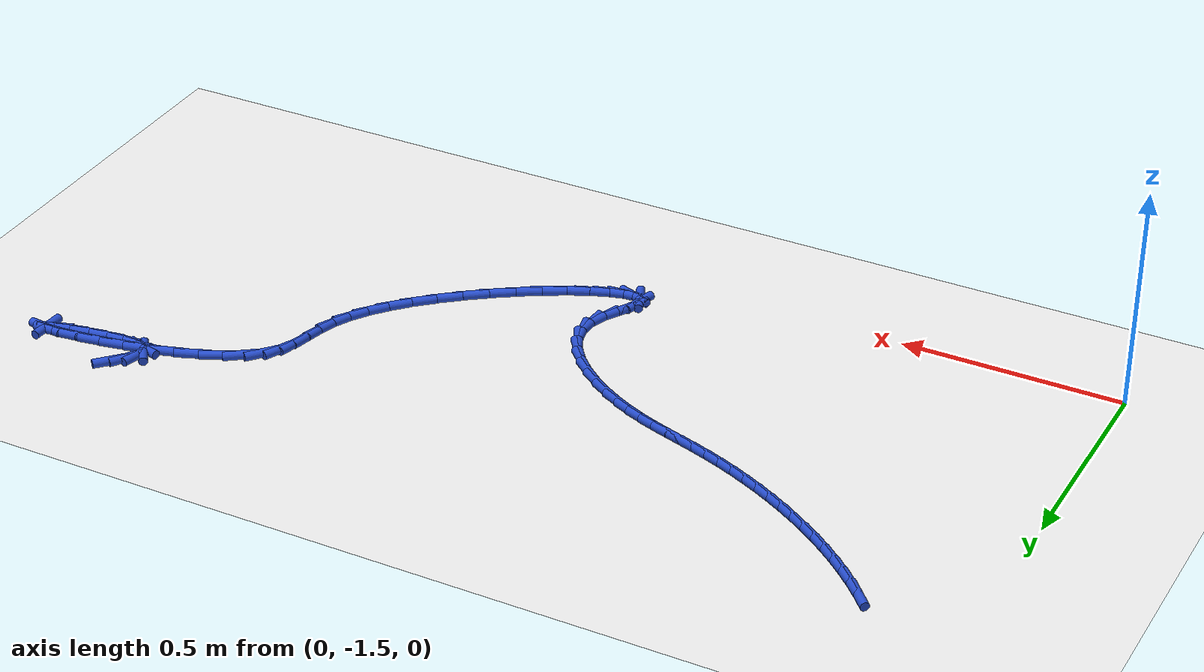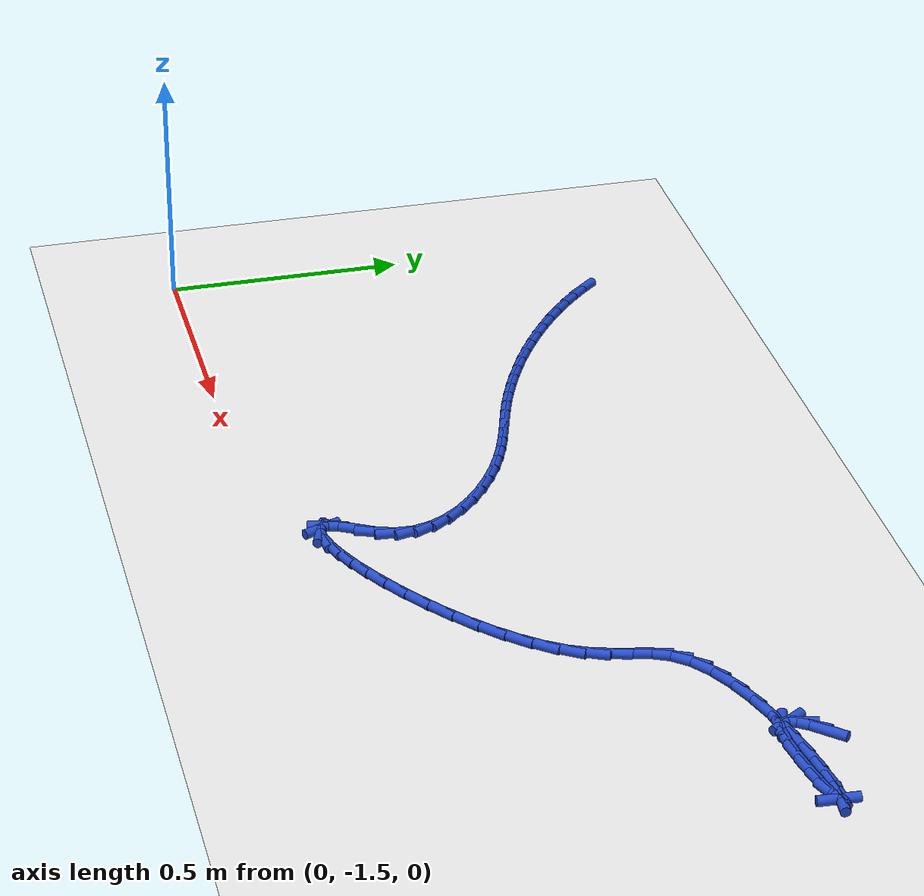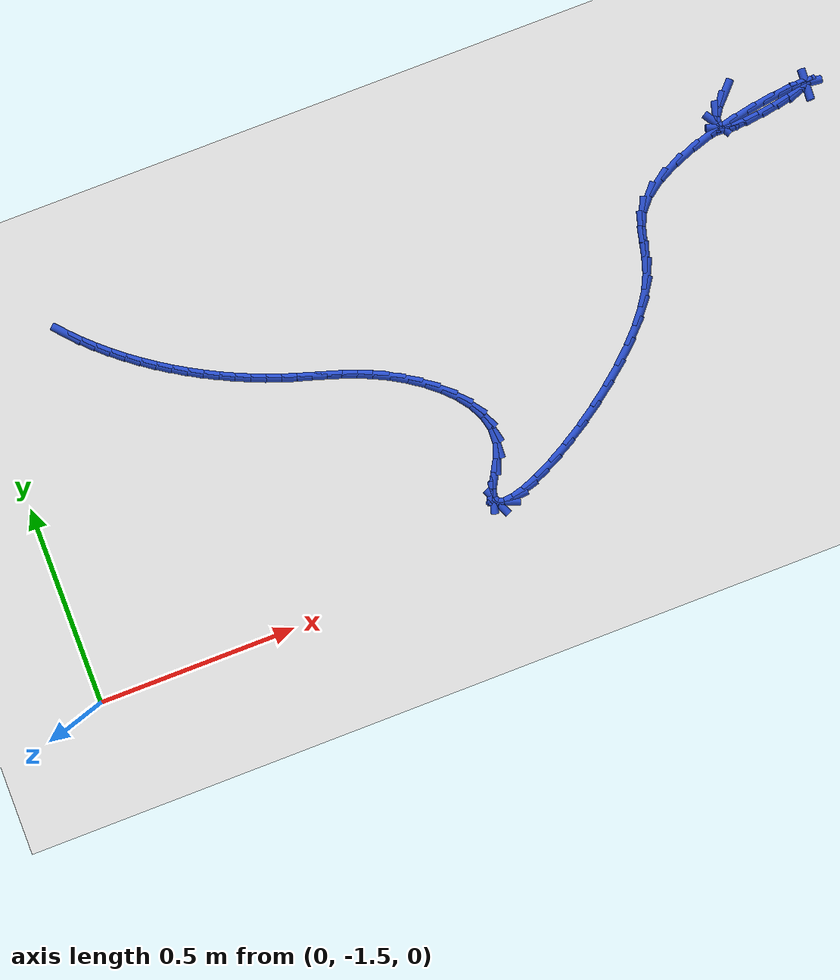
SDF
<sdf version="1.6">
 <world name="default">
  <model name="ground_plane">
   <static>1</static>
   <link name="link">
    <collision name="collision">
     <geometry><plane><normal>0 0 1</normal><size>100 100</size></plane></geometry>
     <surface><friction><ode><mu>100</mu><mu2>50</mu2></ode></friction></surface>
    </collision>
    <visual name="visual">
     <cast_shadows>0</cast_shadows>
     <geometry><plane><normal>0 0 1</normal><size>100 100</size></plane></geometry>
     <material>
      <script><uri>file://media/materials/scripts/gazebo.material</uri><name>Gazebo/WhiteGlow</name></script>
     </material>
    </visual>
   </link>
  </model>
  <model name="line">
   <link name="link_135">
    <pose>1.9542435848929889 -0.6494443943694622 0.01 0 1.57 0.8197165080307512</pose>
    <collision name="collision">
     <geometry><cylinder><radius>0.01</radius><length>0.08</length></cylinder></geometry>
    </collision>
    <visual name="visual">
     <material>
      <script><name>Gazebo/Blue</name><uri>file://media/materials/scripts/gazebo.material</uri></script>
     </material>
     <geometry><cylinder><radius>0.01</radius><length>0.08</length></cylinder></geometry>
    </visual>
   </link>
   <link name="link_136">
    <pose>1.931133360173678 -0.6741978671155926 0.01 0 1.57 0.9657861117656014</pose>
    <collision name="collision">
     <geometry><cylinder><radius>0.01</radius><length>0.08</length></cylinder></geometry>
    </collision>
    <visual name="visual">
     <material>
      <script><name>Gazebo/Blue</name><uri>file://media/materials/scripts/gazebo.material</uri></script>
     </material>
     <geometry><cylinder><radius>0.01</radius><length>0.08</length></cylinder></geometry>
    </visual>
   </link>
   <link name="link_137">
    <pose>1.9167384955555613 -0.6950142124877774 0.01 0 1.57 1.3182694971367963</pose>
    <collision name="collision">
     <geometry><cylinder><radius>0.01</radius><length>0.08</length></cylinder></geometry>
    </collision>
    <visual name="visual">
     <material>
      <script><name>Gazebo/Blue</name><uri>file://media/materials/scripts/gazebo.material</uri></script>
     </material>
     <geometry><cylinder><radius>0.01</radius><length>0.08</length></cylinder></geometry>
    </visual>
   </link>
   <link name="link_138">
    <pose>1.9125014727767176 -0.7114345384082934 0.01 0 1.57 -1.0038522543107689</pose>
    <collision name="collision">
     <geometry><cylinder><radius>0.01</radius><length>0.08</length></cylinder></geometry>
    </collision>
    <visual name="visual">
     <material>
      <script><name>Gazebo/Blue</name><uri>file://media/materials/scripts/gazebo.material</uri></script>
     </material>
     <geometry><cylinder><radius>0.01</radius><length>0.08</length></cylinder></geometry>
    </visual>
   </link>
   <link name="link_139">
    <pose>1.9198647735752234 -0.7229999527994166 0.01 0 1.57 -0.2972812211043334</pose>
    <collision name="collision">
     <geometry><cylinder><radius>0.01</radius><length>0.08</length></cylinder></geometry>
    </collision>
    <visual name="visual">
     <material>
      <script><name>Gazebo/Blue</name><uri>file://media/materials/scripts/gazebo.material</uri></script>
     </material>
     <geometry><cylinder><radius>0.01</radius><length>0.08</length></cylinder></geometry>
    </visual>
   </link>
   <link name="link_140">
    <pose>1.940270879689157 -0.7292515635834231 0.01 0 1.57 -0.023000981150309772</pose>
    <collision name="collision">
     <geometry><cylinder><radius>0.01</radius><length>0.08</length></cylinder></geometry>
    </collision>
    <visual name="visual">
     <material>
      <script><name>Gazebo/Blue</name><uri>file://media/materials/scripts/gazebo.material</uri></script>
     </material>
     <geometry><cylinder><radius>0.01</radius><length>0.08</length></cylinder></geometry>
    </visual>
   </link>
   <link name="link_141">
    <pose>1.9740126374338387 -0.7300277940090916 0.01 0 1.57 0.08417685299239348</pose>
    <collision name="collision">
     <geometry><cylinder><radius>0.01</radius><length>0.08</length></cylinder></geometry>
    </collision>
    <visual name="visual">
     <material>
      <script><name>Gazebo/Blue</name><uri>file://media/materials/scripts/gazebo.material</uri></script>
     </material>
     <geometry><cylinder><radius>0.01</radius><length>0.08</length></cylinder></geometry>
    </visual>
   </link>
   <link name="link_142">
    <pose>2.0164253705855857 -0.7264491672006507 0.01 0 1.57 0.14248419919772642</pose>
    <collision name="collision">
     <geometry><cylinder><radius>0.01</radius><length>0.08</length></cylinder></geometry>
    </collision>
    <visual name="visual">
     <material>
      <script><name>Gazebo/Blue</name><uri>file://media/materials/scripts/gazebo.material</uri></script>
     </material>
     <geometry><cylinder><radius>0.01</radius><length>0.08</length></cylinder></geometry>
    </visual>
   </link>
   <link name="link_143">
    <pose>2.0615083802899994 -0.7199817245195059 0.01 0 1.57 0.18677295118036513</pose>
    <collision name="collision">
     <geometry><cylinder><radius>0.01</radius><length>0.08</length></cylinder></geometry>
    </collision>
    <visual name="visual">
     <material>
      <script><name>Gazebo/Blue</name><uri>file://media/materials/scripts/gazebo.material</uri></script>
     </material>
     <geometry><cylinder><radius>0.01</radius><length>0.08</length></cylinder></geometry>
    </visual>
   </link>
   <link name="link_144">
    <pose>2.103260948200959 -0.7120915123679535 0.01 0 1.57 0.23746300732127779</pose>
    <collision name="collision">
     <geometry><cylinder><radius>0.01</radius><length>0.08</length></cylinder></geometry>
    </collision>
    <visual name="visual">
     <material>
      <script><name>Gazebo/Blue</name><uri>file://media/materials/scripts/gazebo.material</uri></script>
     </material>
     <geometry><cylinder><radius>0.01</radius><length>0.08</length></cylinder></geometry>
    </visual>
   </link>
   <link name="link_145">
    <pose>2.1356823559723446 -0.704244577148291 0.01 0 1.57 0.3532702683871271</pose>
    <collision name="collision">
     <geometry><cylinder><radius>0.01</radius><length>0.08</length></cylinder></geometry>
    </collision>
    <visual name="visual">
     <material>
      <script><name>Gazebo/Blue</name><uri>file://media/materials/scripts/gazebo.material</uri></script>
     </material>
     <geometry><cylinder><radius>0.01</radius><length>0.08</length></cylinder></geometry>
    </visual>
   </link>
   <link name="link_146">
    <pose>2.152950135449954 -0.6978772741832215 0.01 0 1.57 1.4983872275575882</pose>
    <collision name="collision">
     <geometry><cylinder><radius>0.01</radius><length>0.08</length></cylinder></geometry>
    </collision>
    <visual name="visual">
     <material>
      <script><name>Gazebo/Blue</name><uri>file://media/materials/scripts/gazebo.material</uri></script>
     </material>
     <geometry><cylinder><radius>0.01</radius><length>0.08</length></cylinder></geometry>
    </visual>
   </link>
   <link name="link_147">
    <pose>2.1532488943990358 -0.6937585013931374 0.01 0 1.57 -0.12056922970717514</pose>
    <collision name="collision">
     <geometry><cylinder><radius>0.01</radius><length>0.08</length></cylinder></geometry>
    </collision>
    <visual name="visual">
     <material>
      <script><name>Gazebo/Blue</name><uri>file://media/materials/scripts/gazebo.material</uri></script>
     </material>
     <geometry><cylinder><radius>0.01</radius><length>0.08</length></cylinder></geometry>
    </visual>
   </link>
   <link name="link_148">
    <pose>2.138719494883307 -0.6919981646378807 0.01 0 1.57 0.02513489577467971</pose>
    <collision name="collision">
     <geometry><cylinder><radius>0.01</radius><length>0.08</length></cylinder></geometry>
    </collision>
    <visual name="visual">
     <material>
      <script><name>Gazebo/Blue</name><uri>file://media/materials/scripts/gazebo.material</uri></script>
     </material>
     <geometry><cylinder><radius>0.01</radius><length>0.08</length></cylinder></geometry>
    </visual>
   </link>
   <link name="link_149">
    <pose>2.1116708843150787 -0.692678171852524 0.01 0 1.57 0.08573552437569797</pose>
    <collision name="collision">
     <geometry><cylinder><radius>0.01</radius><length>0.08</length></cylinder></geometry>
    </collision>
    <visual name="visual">
     <material>
      <script><name>Gazebo/Blue</name><uri>file://media/materials/scripts/gazebo.material</uri></script>
     </material>
     <geometry><cylinder><radius>0.01</radius><length>0.08</length></cylinder></geometry>
    </visual>
   </link>
   <link name="link_150">
    <pose>2.074412010106661 -0.6958804309721394 0.01 0 1.57 0.12787228772695078</pose>
    <collision name="collision">
     <geometry><cylinder><radius>0.01</radius><length>0.08</length></cylinder></geometry>
    </collision>
    <visual name="visual">
     <material>
      <script><name>Gazebo/Blue</name><uri>file://media/materials/scripts/gazebo.material</uri></script>
     </material>
     <geometry><cylinder><radius>0.01</radius><length>0.08</length></cylinder></geometry>
    </visual>
   </link>
   <link name="link_151">
    <pose>2.029251819670365 -0.7016868499317993 0.01 0 1.57 0.16579518239403154</pose>
    <collision name="collision">
     <geometry><cylinder><radius>0.01</radius><length>0.08</length></cylinder></geometry>
    </collision>
    <visual name="visual">
     <material>
      <script><name>Gazebo/Blue</name><uri>file://media/materials/scripts/gazebo.material</uri></script>
     </material>
     <geometry><cylinder><radius>0.01</radius><length>0.08</length></cylinder></geometry>
    </visual>
   </link>
   <link name="link_152">
    <pose>1.9784992604185005 -0.7101793366665764 0.01 0 1.57 0.205448003142174</pose>
    <collision name="collision">
     <geometry><cylinder><radius>0.01</radius><length>0.08</length></cylinder></geometry>
    </collision>
    <visual name="visual">
     <material>
      <script><name>Gazebo/Blue</name><uri>file://media/materials/scripts/gazebo.material</uri></script>
     </material>
     <geometry><cylinder><radius>0.01</radius><length>0.08</length></cylinder></geometry>
    </visual>
   </link>
   <link name="link_153">
    <pose>1.9244632797633785 -0.721439799111543 0.01 0 1.57 0.2510896973947851</pose>
    <collision name="collision">
     <geometry><cylinder><radius>0.01</radius><length>0.08</length></cylinder></geometry>
    </collision>
    <visual name="visual">
     <material>
      <script><name>Gazebo/Blue</name><uri>file://media/materials/scripts/gazebo.material</uri></script>
     </material>
     <geometry><cylinder><radius>0.01</radius><length>0.08</length></cylinder></geometry>
    </visual>
   </link>
   <link name="link_154">
    <pose>1.869452825117311 -0.7355501452017709 0.01 0 1.57 0.30743375285592006</pose>
    <collision name="collision">
     <geometry><cylinder><radius>0.01</radius><length>0.08</length></cylinder></geometry>
    </collision>
    <visual name="visual">
     <material>
      <script><name>Gazebo/Blue</name><uri>file://media/materials/scripts/gazebo.material</uri></script>
     </material>
     <geometry><cylinder><radius>0.01</radius><length>0.08</length></cylinder></geometry>
    </visual>
   </link>
   <link name="link_155">
    <pose>1.815776843892608 -0.752592282872333 0.01 0 1.57 0.381243834679049</pose>
    <collision name="collision">
     <geometry><cylinder><radius>0.01</radius><length>0.08</length></cylinder></geometry>
    </collision>
    <visual name="visual">
     <material>
      <script><name>Gazebo/Blue</name><uri>file://media/materials/scripts/gazebo.material</uri></script>
     </material>
     <geometry><cylinder><radius>0.01</radius><length>0.08</length></cylinder></geometry>
    </visual>
   </link>
   <link name="link_156">
    <pose>1.7657442835015806 -0.7726481200583017 0.01 0 1.57 0.48361315805275695</pose>
    <collision name="collision">
     <geometry><cylinder><radius>0.01</radius><length>0.08</length></cylinder></geometry>
    </collision>
    <visual name="visual">
     <material>
      <script><name>Gazebo/Blue</name><uri>file://media/materials/scripts/gazebo.material</uri></script>
     </material>
     <geometry><cylinder><radius>0.01</radius><length>0.08</length></cylinder></geometry>
    </visual>
   </link>
   <link name="link_157">
    <pose>1.721664091356538 -0.7957995646947498 0.01 0 1.57 0.6338695952803437</pose>
    <collision name="collision">
     <geometry><cylinder><radius>0.01</radius><length>0.08</length></cylinder></geometry>
    </collision>
    <visual name="visual">
     <material>
      <script><name>Gazebo/Blue</name><uri>file://media/materials/scripts/gazebo.material</uri></script>
     </material>
     <geometry><cylinder><radius>0.01</radius><length>0.08</length></cylinder></geometry>
    </visual>
   </link>
   <link name="link_158">
    <pose>1.6858452148697933 -0.8221285247167487 0.01 0 1.57 0.8627054741708235</pose>
    <collision name="collision">
     <geometry><cylinder><radius>0.01</radius><length>0.08</length></cylinder></geometry>
    </collision>
    <visual name="visual">
     <material>
      <script><name>Gazebo/Blue</name><uri>file://media/materials/scripts/gazebo.material</uri></script>
     </material>
     <geometry><cylinder><radius>0.01</radius><length>0.08</length></cylinder></geometry>
    </visual>
   </link>
   <link name="link_159">
    <pose>1.6605170931093824 -0.8517100395506557 0.01 0 1.57 1.128361695752353</pose>
    <collision name="collision">
     <geometry><cylinder><radius>0.01</radius><length>0.08</length></cylinder></geometry>
    </collision>
    <visual name="visual">
     <material>
      <script><name>Gazebo/Blue</name><uri>file://media/materials/scripts/gazebo.material</uri></script>
     </material>
     <geometry><cylinder><radius>0.01</radius><length>0.08</length></cylinder></geometry>
    </visual>
   </link>
   <link name="link_160">
    <pose>1.645043419114546 -0.8843715846500826 0.01 0 1.57 1.2982960547043936</pose>
    <collision name="collision">
     <geometry><cylinder><radius>0.01</radius><length>0.08</length></cylinder></geometry>
    </collision>
    <visual name="visual">
     <material>
      <script><name>Gazebo/Blue</name><uri>file://media/materials/scripts/gazebo.material</uri></script>
     </material>
     <geometry><cylinder><radius>0.01</radius><length>0.08</length></cylinder></geometry>
    </visual>
   </link>
   <link name="link_161">
    <pose>1.635190430776808 -0.9196298611434934 0.01 0 1.57 1.34210206450558</pose>
    <collision name="collision">
     <geometry><cylinder><radius>0.01</radius><length>0.08</length></cylinder></geometry>
    </collision>
    <visual name="visual">
     <material>
      <script><name>Gazebo/Blue</name><uri>file://media/materials/scripts/gazebo.material</uri></script>
     </material>
     <geometry><cylinder><radius>0.01</radius><length>0.08</length></cylinder></geometry>
    </visual>
   </link>
   <link name="link_162">
    <pose>1.6264961395478286 -0.9569818543005267 0.01 0 1.57 1.2719405238055763</pose>
    <collision name="collision">
     <geometry><cylinder><radius>0.01</radius><length>0.08</length></cylinder></geometry>
    </collision>
    <visual name="visual">
     <material>
      <script><name>Gazebo/Blue</name><uri>file://media/materials/scripts/gazebo.material</uri></script>
     </material>
     <geometry><cylinder><radius>0.01</radius><length>0.08</length></cylinder></geometry>
    </visual>
   </link>
   <link name="link_163">
    <pose>1.6144985568792662 -0.9959245493908172 0.01 0 1.57 1.120838660611892</pose>
    <collision name="collision">
     <geometry><cylinder><radius>0.01</radius><length>0.08</length></cylinder></geometry>
    </collision>
    <visual name="visual">
     <material>
      <script><name>Gazebo/Blue</name><uri>file://media/materials/scripts/gazebo.material</uri></script>
     </material>
     <geometry><cylinder><radius>0.01</radius><length>0.08</length></cylinder></geometry>
    </visual>
   </link>
   <link name="link_164">
    <pose>1.595166554355094 -1.0359491627859616 0.01 0 1.57 0.9806344628373592</pose>
    <collision name="collision">
     <geometry><cylinder><radius>0.01</radius><length>0.08</length></cylinder></geometry>
    </collision>
    <visual name="visual">
     <material>
      <script><name>Gazebo/Blue</name><uri>file://media/materials/scripts/gazebo.material</uri></script>
     </material>
     <geometry><cylinder><radius>0.01</radius><length>0.08</length></cylinder></geometry>
    </visual>
   </link>
   <link name="link_165">
    <pose>1.5680063071527246 -1.07649954898246 0.01 0 1.57 0.8760569092508449</pose>
    <collision name="collision">
     <geometry><cylinder><radius>0.01</radius><length>0.08</length></cylinder></geometry>
    </collision>
    <visual name="visual">
     <material>
      <script><name>Gazebo/Blue</name><uri>file://media/materials/scripts/gazebo.material</uri></script>
     </material>
     <geometry><cylinder><radius>0.01</radius><length>0.08</length></cylinder></geometry>
    </visual>
   </link>
   <link name="link_166">
    <pose>1.5342589086466427 -1.1169963332071777 0.01 0 1.57 0.795305235799856</pose>
    <collision name="collision">
     <geometry><cylinder><radius>0.01</radius><length>0.08</length></cylinder></geometry>
    </collision>
    <visual name="visual">
     <material>
      <script><name>Gazebo/Blue</name><uri>file://media/materials/scripts/gazebo.material</uri></script>
     </material>
     <geometry><cylinder><radius>0.01</radius><length>0.08</length></cylinder></geometry>
    </visual>
   </link>
   <link name="link_167">
    <pose>1.495177402113036 -1.156859980686645 0.01 0 1.57 0.7303091149750383</pose>
    <collision name="collision">
     <geometry><cylinder><radius>0.01</radius><length>0.08</length></cylinder></geometry>
    </collision>
    <visual name="visual">
     <material>
      <script><name>Gazebo/Blue</name><uri>file://media/materials/scripts/gazebo.material</uri></script>
     </material>
     <geometry><cylinder><radius>0.01</radius><length>0.08</length></cylinder></geometry>
    </visual>
   </link>
   <link name="link_168">
    <pose>1.4520148308280891 -1.1955109566473947 0.01 0 1.57 0.6756192880635592</pose>
    <collision name="collision">
     <geometry><cylinder><radius>0.01</radius><length>0.08</length></cylinder></geometry>
    </collision>
    <visual name="visual">
     <material>
      <script><name>Gazebo/Blue</name><uri>file://media/materials/scripts/gazebo.material</uri></script>
     </material>
     <geometry><cylinder><radius>0.01</radius><length>0.08</length></cylinder></geometry>
    </visual>
   </link>
   <link name="link_169">
    <pose>1.406024238067989 -1.2323697263159588 0.01 0 1.57 0.6273356098607326</pose>
    <collision name="collision">
     <geometry><cylinder><radius>0.01</radius><length>0.08</length></cylinder></geometry>
    </collision>
    <visual name="visual">
     <material>
      <script><name>Gazebo/Blue</name><uri>file://media/materials/scripts/gazebo.material</uri></script>
     </material>
     <geometry><cylinder><radius>0.01</radius><length>0.08</length></cylinder></geometry>
    </visual>
   </link>
   <link name="link_170">
    <pose>1.3584586671089194 -1.26685675491887 0.01 0 1.57 0.5823540845712082</pose>
    <collision name="collision">
     <geometry><cylinder><radius>0.01</radius><length>0.08</length></cylinder></geometry>
    </collision>
    <visual name="visual">
     <material>
      <script><name>Gazebo/Blue</name><uri>file://media/materials/scripts/gazebo.material</uri></script>
     </material>
     <geometry><cylinder><radius>0.01</radius><length>0.08</length></cylinder></geometry>
    </visual>
   </link>
   <link name="link_171">
    <pose>1.3105711612270685 -1.2983925076826588 0.01 0 1.57 0.5377705407554121</pose>
    <collision name="collision">
     <geometry><cylinder><radius>0.01</radius><length>0.08</length></cylinder></geometry>
    </collision>
    <visual name="visual">
     <material>
      <script><name>Gazebo/Blue</name><uri>file://media/materials/scripts/gazebo.material</uri></script>
     </material>
     <geometry><cylinder><radius>0.01</radius><length>0.08</length></cylinder></geometry>
    </visual>
   </link>
   <link name="link_172">
    <pose>1.2636147636986212 -1.326397449833858 0.01 0 1.57 0.4902366504426903</pose>
    <collision name="collision">
     <geometry><cylinder><radius>0.01</radius><length>0.08</length></cylinder></geometry>
    </collision>
    <visual name="visual">
     <material>
      <script><name>Gazebo/Blue</name><uri>file://media/materials/scripts/gazebo.material</uri></script>
     </material>
     <geometry><cylinder><radius>0.01</radius><length>0.08</length></cylinder></geometry>
    </visual>
   </link>
   <link name="link_173">
    <pose>1.218842517799764 -1.3502920465989998 0.01 0 1.57 0.4349377280161387</pose>
    <collision name="collision">
     <geometry><cylinder><radius>0.01</radius><length>0.08</length></cylinder></geometry>
    </collision>
    <visual name="visual">
     <material>
      <script><name>Gazebo/Blue</name><uri>file://media/materials/scripts/gazebo.material</uri></script>
     </material>
     <geometry><cylinder><radius>0.01</radius><length>0.08</length></cylinder></geometry>
    </visual>
   </link>
   <link name="link_174">
    <pose>1.1775074668066816 -1.369496763204616 0.01 0 1.57 0.3633919491088101</pose>
    <collision name="collision">
     <geometry><cylinder><radius>0.01</radius><length>0.08</length></cylinder></geometry>
    </collision>
    <visual name="visual">
     <material>
      <script><name>Gazebo/Blue</name><uri>file://media/materials/scripts/gazebo.material</uri></script>
     </material>
     <geometry><cylinder><radius>0.01</radius><length>0.08</length></cylinder></geometry>
    </visual>
   </link>
   <link name="link_175">
    <pose>1.14086265399556 -1.3834320648772391 0.01 0 1.57 0.25753698675462794</pose>
    <collision name="collision">
     <geometry><cylinder><radius>0.01</radius><length>0.08</length></cylinder></geometry>
    </collision>
    <visual name="visual">
     <material>
      <script><name>Gazebo/Blue</name><uri>file://media/materials/scripts/gazebo.material</uri></script>
     </material>
     <geometry><cylinder><radius>0.01</radius><length>0.08</length></cylinder></geometry>
    </visual>
   </link>
   <link name="link_176">
    <pose>1.110161122642586 -1.3915184168433996 0.01 0 1.57 0.07041531392217976</pose>
    <collision name="collision">
     <geometry><cylinder><radius>0.01</radius><length>0.08</length></cylinder></geometry>
    </collision>
    <visual name="visual">
     <material>
      <script><name>Gazebo/Blue</name><uri>file://media/materials/scripts/gazebo.material</uri></script>
     </material>
     <geometry><cylinder><radius>0.01</radius><length>0.08</length></cylinder></geometry>
    </visual>
   </link>
   <link name="link_177">
    <pose>1.086655916023945 -1.3931762843296307 0.01 0 1.57 -0.34143650297704425</pose>
    <collision name="collision">
     <geometry><cylinder><radius>0.01</radius><length>0.08</length></cylinder></geometry>
    </collision>
    <visual name="visual">
     <material>
      <script><name>Gazebo/Blue</name><uri>file://media/materials/scripts/gazebo.material</uri></script>
     </material>
     <geometry><cylinder><radius>0.01</radius><length>0.08</length></cylinder></geometry>
    </visual>
   </link>
   <link name="link_178">
    <pose>1.0716000774158234 -1.3878261325624648 0.01 0 1.57 -1.1784631852307672</pose>
    <collision name="collision">
     <geometry><cylinder><radius>0.01</radius><length>0.08</length></cylinder></geometry>
    </collision>
    <visual name="visual">
     <material>
      <script><name>Gazebo/Blue</name><uri>file://media/materials/scripts/gazebo.material</uri></script>
     </material>
     <geometry><cylinder><radius>0.01</radius><length>0.08</length></cylinder></geometry>
    </visual>
   </link>
   <link name="link_179">
    <pose>1.066246650094406 -1.3748884267684323 0.01 0 1.57 1.3113408155506259</pose>
    <collision name="collision">
     <geometry><cylinder><radius>0.01</radius><length>0.08</length></cylinder></geometry>
    </collision>
    <visual name="visual">
     <material>
      <script><name>Gazebo/Blue</name><uri>file://media/materials/scripts/gazebo.material</uri></script>
     </material>
     <geometry><cylinder><radius>0.01</radius><length>0.08</length></cylinder></geometry>
    </visual>
   </link>
   <link name="link_180">
    <pose>1.0718486773358793 -1.3537836321740666 0.01 0 1.57 1.0601019905840214</pose>
    <collision name="collision">
     <geometry><cylinder><radius>0.01</radius><length>0.08</length></cylinder></geometry>
    </collision>
    <visual name="visual">
     <material>
      <script><name>Gazebo/Blue</name><uri>file://media/materials/scripts/gazebo.material</uri></script>
     </material>
     <geometry><cylinder><radius>0.01</radius><length>0.08</length></cylinder></geometry>
    </visual>
   </link>
   <link name="link_181">
    <pose>1.0882864758999218 -1.3244446001955923 0.01 0 1.57 1.0544714132475006</pose>
    <collision name="collision">
     <geometry><cylinder><radius>0.01</radius><length>0.08</length></cylinder></geometry>
    </collision>
    <visual name="visual">
     <material>
      <script><name>Gazebo/Blue</name><uri>file://media/materials/scripts/gazebo.material</uri></script>
     </material>
     <geometry><cylinder><radius>0.01</radius><length>0.08</length></cylinder></geometry>
    </visual>
   </link>
   <link name="link_182">
    <pose>1.108099036312067 -1.289544417927042 0.01 0 1.57 1.2228540670369854</pose>
    <collision name="collision">
     <geometry><cylinder><radius>0.01</radius><length>0.08</length></cylinder></geometry>
    </collision>
    <visual name="visual">
     <material>
      <script><name>Gazebo/Blue</name><uri>file://media/materials/scripts/gazebo.material</uri></script>
     </material>
     <geometry><cylinder><radius>0.01</radius><length>0.08</length></cylinder></geometry>
    </visual>
   </link>
   <link name="link_183">
    <pose>1.121484094806251 -1.2526403081154633 0.01 0 1.57 1.5227819022149718</pose>
    <collision name="collision">
     <geometry><cylinder><radius>0.01</radius><length>0.08</length></cylinder></geometry>
    </collision>
    <visual name="visual">
     <material>
      <script><name>Gazebo/Blue</name><uri>file://media/materials/scripts/gazebo.material</uri></script>
     </material>
     <geometry><cylinder><radius>0.01</radius><length>0.08</length></cylinder></geometry>
    </visual>
   </link>
   <link name="link_184">
    <pose>1.1232432827082763 -1.2160297303330816 0.01 0 1.57 -1.3320696016974736</pose>
    <collision name="collision">
     <geometry><cylinder><radius>0.01</radius><length>0.08</length></cylinder></geometry>
    </collision>
    <visual name="visual">
     <material>
      <script><name>Gazebo/Blue</name><uri>file://media/materials/scripts/gazebo.material</uri></script>
     </material>
     <geometry><cylinder><radius>0.01</radius><length>0.08</length></cylinder></geometry>
    </visual>
   </link>
   <link name="link_185">
    <pose>1.1145402955252464 -1.1802690648455672 0.01 0 1.57 -1.10032876655553</pose>
    <collision name="collision">
     <geometry><cylinder><radius>0.01</radius><length>0.08</length></cylinder></geometry>
    </collision>
    <visual name="visual">
     <material>
      <script><name>Gazebo/Blue</name><uri>file://media/materials/scripts/gazebo.material</uri></script>
     </material>
     <geometry><cylinder><radius>0.01</radius><length>0.08</length></cylinder></geometry>
    </visual>
   </link>
   <link name="link_186">
    <pose>1.0970044334438573 -1.1457872718471145 0.01 0 1.57 -0.924198187482523</pose>
    <collision name="collision">
     <geometry><cylinder><radius>0.01</radius><length>0.08</length></cylinder></geometry>
    </collision>
    <visual name="visual">
     <material>
      <script><name>Gazebo/Blue</name><uri>file://media/materials/scripts/gazebo.material</uri></script>
     </material>
     <geometry><cylinder><radius>0.01</radius><length>0.08</length></cylinder></geometry>
    </visual>
   </link>
   <link name="link_187">
    <pose>1.0722649966508067 -1.113013311531921 0.01 0 1.57 -0.7907049463337319</pose>
    <collision name="collision">
     <geometry><cylinder><radius>0.01</radius><length>0.08</length></cylinder></geometry>
    </collision>
    <visual name="visual">
     <material>
      <script><name>Gazebo/Blue</name><uri>file://media/materials/scripts/gazebo.material</uri></script>
     </material>
     <geometry><cylinder><radius>0.01</radius><length>0.08</length></cylinder></geometry>
    </visual>
   </link>
   <link name="link_188">
    <pose>1.0419512853327908 -1.0823761440941824 0.01 0 1.57 -0.6864561122753682</pose>
    <collision name="collision">
     <geometry><cylinder><radius>0.01</radius><length>0.08</length></cylinder></geometry>
    </collision>
    <visual name="visual">
     <material>
      <script><name>Gazebo/Blue</name><uri>file://media/materials/scripts/gazebo.material</uri></script>
     </material>
     <geometry><cylinder><radius>0.01</radius><length>0.08</length></cylinder></geometry>
    </visual>
   </link>
   <link name="link_189">
    <pose>1.0076925996765076 -1.0543047297280965 0.01 0 1.57 -0.601020566458686</pose>
    <collision name="collision">
     <geometry><cylinder><radius>0.01</radius><length>0.08</length></cylinder></geometry>
    </collision>
    <visual name="visual">
     <material>
      <script><name>Gazebo/Blue</name><uri>file://media/materials/scripts/gazebo.material</uri></script>
     </material>
     <geometry><cylinder><radius>0.01</radius><length>0.08</length></cylinder></geometry>
    </visual>
   </link>
   <link name="link_190">
    <pose>0.9711182398686535 -1.02922802862786 0.01 0 1.57 -0.5264234160218665</pose>
    <collision name="collision">
     <geometry><cylinder><radius>0.01</radius><length>0.08</length></cylinder></geometry>
    </collision>
    <visual name="visual">
     <material>
      <script><name>Gazebo/Blue</name><uri>file://media/materials/scripts/gazebo.material</uri></script>
     </material>
     <geometry><cylinder><radius>0.01</radius><length>0.08</length></cylinder></geometry>
    </visual>
   </link>
   <link name="link_191">
    <pose>0.9338572123201407 -1.00757480273359 0.01 0 1.57 -0.45730684061391785</pose>
    <collision name="collision">
     <geometry><cylinder><radius>0.01</radius><length>0.08</length></cylinder></geometry>
    </collision>
    <visual name="visual">
     <material>
      <script><name>Gazebo/Blue</name><uri>file://media/materials/scripts/gazebo.material</uri></script>
     </material>
     <geometry><cylinder><radius>0.01</radius><length>0.08</length></cylinder></geometry>
    </visual>
   </link>
   <link name="link_192">
    <pose>0.8971478181649536 -0.9895101472073816 0.01 0 1.57 -0.39623119886572056</pose>
    <collision name="collision">
     <geometry><cylinder><radius>0.01</radius><length>0.08</length></cylinder></geometry>
    </collision>
    <visual name="visual">
     <material>
      <script><name>Gazebo/Blue</name><uri>file://media/materials/scripts/gazebo.material</uri></script>
     </material>
     <geometry><cylinder><radius>0.01</radius><length>0.08</length></cylinder></geometry>
    </visual>
   </link>
   <link name="link_193">
    <pose>0.8610671558132843 -0.9744155215685685 0.01 0 1.57 -0.347439969126014</pose>
    <collision name="collision">
     <geometry><cylinder><radius>0.01</radius><length>0.08</length></cylinder></geometry>
    </collision>
    <visual name="visual">
     <material>
      <script><name>Gazebo/Blue</name><uri>file://media/materials/scripts/gazebo.material</uri></script>
     </material>
     <geometry><cylinder><radius>0.01</radius><length>0.08</length></cylinder></geometry>
    </visual>
   </link>
   <link name="link_194">
    <pose>0.8254775821107352 -0.9615274673643278 0.01 0 1.57 -0.31405733056086244</pose>
    <collision name="collision">
     <geometry><cylinder><radius>0.01</radius><length>0.08</length></cylinder></geometry>
    </collision>
    <visual name="visual">
     <material>
      <script><name>Gazebo/Blue</name><uri>file://media/materials/scripts/gazebo.material</uri></script>
     </material>
     <geometry><cylinder><radius>0.01</radius><length>0.08</length></cylinder></geometry>
    </visual>
   </link>
   <link name="link_195">
    <pose>0.7902414539029085 -0.9500825261418369 0.01 0 1.57 -0.29823288764167233</pose>
    <collision name="collision">
     <geometry><cylinder><radius>0.01</radius><length>0.08</length></cylinder></geometry>
    </collision>
    <visual name="visual">
     <material>
      <script><name>Gazebo/Blue</name><uri>file://media/materials/scripts/gazebo.material</uri></script>
     </material>
     <geometry><cylinder><radius>0.01</radius><length>0.08</length></cylinder></geometry>
    </visual>
   </link>
   <link name="link_196">
    <pose>0.7552211280354075 -0.9393172394482737 0.01 0 1.57 -0.301049966455307</pose>
    <collision name="collision">
     <geometry><cylinder><radius>0.01</radius><length>0.08</length></cylinder></geometry>
    </collision>
    <visual name="visual">
     <material>
      <script><name>Gazebo/Blue</name><uri>file://media/materials/scripts/gazebo.material</uri></script>
     </material>
     <geometry><cylinder><radius>0.01</radius><length>0.08</length></cylinder></geometry>
    </visual>
   </link>
   <link name="link_197">
    <pose>0.7202789613538345 -0.9284681488308164 0.01 0 1.57 -0.32215779050620574</pose>
    <collision name="collision">
     <geometry><cylinder><radius>0.01</radius><length>0.08</length></cylinder></geometry>
    </collision>
    <visual name="visual">
     <material>
      <script><name>Gazebo/Blue</name><uri>file://media/materials/scripts/gazebo.material</uri></script>
     </material>
     <geometry><cylinder><radius>0.01</radius><length>0.08</length></cylinder></geometry>
    </visual>
   </link>
   <link name="link_198">
    <pose>0.6852818414692785 -0.916786604395238 0.01 0 1.57 -0.352388721952121</pose>
    <collision name="collision">
     <geometry><cylinder><radius>0.01</radius><length>0.08</length></cylinder></geometry>
    </collision>
    <visual name="visual">
     <material>
      <script><name>Gazebo/Blue</name><uri>file://media/materials/scripts/gazebo.material</uri></script>
     </material>
     <geometry><cylinder><radius>0.01</radius><length>0.08</length></cylinder></geometry>
    </visual>
   </link>
   <link name="link_199">
    <pose>0.6502082573701893 -0.9038887192308882 0.01 0 1.57 -0.38289243643108856</pose>
    <collision name="collision">
     <geometry><cylinder><radius>0.01</radius><length>0.08</length></cylinder></geometry>
    </collision>
    <visual name="visual">
     <material>
      <script><name>Gazebo/Blue</name><uri>file://media/materials/scripts/gazebo.material</uri></script>
     </material>
     <geometry><cylinder><radius>0.01</radius><length>0.08</length></cylinder></geometry>
    </visual>
   </link>
   <link name="link_200">
    <pose>0.6151525685005041 -0.8897693226584934 0.01 0 1.57 -0.4134449578377363</pose>
    <collision name="collision">
     <geometry><cylinder><radius>0.01</radius><length>0.08</length></cylinder></geometry>
    </collision>
    <visual name="visual">
     <material>
      <script><name>Gazebo/Blue</name><uri>file://media/materials/scripts/gazebo.material</uri></script>
     </material>
     <geometry><cylinder><radius>0.01</radius><length>0.08</length></cylinder></geometry>
    </visual>
   </link>
   <link name="link_201">
    <pose>0.580214519262467 -0.8744408444397903 0.01 0 1.57 -0.44421916202885064</pose>
    <collision name="collision">
     <geometry><cylinder><radius>0.01</radius><length>0.08</length></cylinder></geometry>
    </collision>
    <visual name="visual">
     <material>
      <script><name>Gazebo/Blue</name><uri>file://media/materials/scripts/gazebo.material</uri></script>
     </material>
     <geometry><cylinder><radius>0.01</radius><length>0.08</length></cylinder></geometry>
    </visual>
   </link>
   <link name="link_202">
    <pose>0.5454938540583252 -0.8579157143365173 0.01 0 1.57 -0.4753808849524684</pose>
    <collision name="collision">
     <geometry><cylinder><radius>0.01</radius><length>0.08</length></cylinder></geometry>
    </collision>
    <visual name="visual">
     <material>
      <script><name>Gazebo/Blue</name><uri>file://media/materials/scripts/gazebo.material</uri></script>
     </material>
     <geometry><cylinder><radius>0.01</radius><length>0.08</length></cylinder></geometry>
    </visual>
   </link>
   <link name="link_203">
    <pose>0.5110903172903231 -0.8402063621104106 0.01 0 1.57 -0.5070909638699754</pose>
    <collision name="collision">
     <geometry><cylinder><radius>0.01</radius><length>0.08</length></cylinder></geometry>
    </collision>
    <visual name="visual">
     <material>
      <script><name>Gazebo/Blue</name><uri>file://media/materials/scripts/gazebo.material</uri></script>
     </material>
     <geometry><cylinder><radius>0.01</radius><length>0.08</length></cylinder></geometry>
    </visual>
   </link>
   <link name="link_204">
    <pose>0.4771036533607056 -0.8213252175232074 0.01 0 1.57 -0.5395068415692561</pose>
    <collision name="collision">
     <geometry><cylinder><radius>0.01</radius><length>0.08</length></cylinder></geometry>
    </collision>
    <visual name="visual">
     <material>
      <script><name>Gazebo/Blue</name><uri>file://media/materials/scripts/gazebo.material</uri></script>
     </material>
     <geometry><cylinder><radius>0.01</radius><length>0.08</length></cylinder></geometry>
    </visual>
   </link>
   <link name="link_205">
    <pose>0.4436336066717185 -0.8012847103366456 0.01 0 1.57 -0.5727837425339245</pose>
    <collision name="collision">
     <geometry><cylinder><radius>0.01</radius><length>0.08</length></cylinder></geometry>
    </collision>
    <visual name="visual">
     <material>
      <script><name>Gazebo/Blue</name><uri>file://media/materials/scripts/gazebo.material</uri></script>
     </material>
     <geometry><cylinder><radius>0.01</radius><length>0.08</length></cylinder></geometry>
    </visual>
   </link>
   <link name="link_206">
    <pose>0.41077992162560595 -0.7800972703124608 0.01 0 1.57 -0.6070754054181849</pose>
    <collision name="collision">
     <geometry><cylinder><radius>0.01</radius><length>0.08</length></cylinder></geometry>
    </collision>
    <visual name="visual">
     <material>
      <script><name>Gazebo/Blue</name><uri>file://media/materials/scripts/gazebo.material</uri></script>
     </material>
     <geometry><cylinder><radius>0.01</radius><length>0.08</length></cylinder></geometry>
    </visual>
   </link>
   <link name="link_207">
    <pose>0.37864234262461494 -0.7577753272123917 0.01 0 1.57 -0.6425343316376128</pose>
    <collision name="collision">
     <geometry><cylinder><radius>0.01</radius><length>0.08</length></cylinder></geometry>
    </collision>
    <visual name="visual">
     <material>
      <script><name>Gazebo/Blue</name><uri>file://media/materials/scripts/gazebo.material</uri></script>
     </material>
     <geometry><cylinder><radius>0.01</radius><length>0.08</length></cylinder></geometry>
    </visual>
   </link>
   <link name="link_208">
    <pose>0.3473206140709898 -0.7343313107981747 0.01 0 1.57 -0.6793114856638193</pose>
    <collision name="collision">
     <geometry><cylinder><radius>0.01</radius><length>0.08</length></cylinder></geometry>
    </collision>
    <visual name="visual">
     <material>
      <script><name>Gazebo/Blue</name><uri>file://media/materials/scripts/gazebo.material</uri></script>
     </material>
     <geometry><cylinder><radius>0.01</radius><length>0.08</length></cylinder></geometry>
    </visual>
   </link>
   <link name="link_209">
    <pose>0.3169144803669759 -0.7097776508315473 0.01 0 1.57 -0.7175553597315157</pose>
    <collision name="collision">
     <geometry><cylinder><radius>0.01</radius><length>0.08</length></cylinder></geometry>
    </collision>
    <visual name="visual">
     <material>
      <script><name>Gazebo/Blue</name><uri>file://media/materials/scripts/gazebo.material</uri></script>
     </material>
     <geometry><cylinder><radius>0.01</radius><length>0.08</length></cylinder></geometry>
    </visual>
   </link>
   <link name="link_210">
    <pose>0.2875236859148176 -0.6841267770742455 0.01 0 1.57 -0.7574102963079675</pose>
    <collision name="collision">
     <geometry><cylinder><radius>0.01</radius><length>0.08</length></cylinder></geometry>
    </collision>
    <visual name="visual">
     <material>
      <script><name>Gazebo/Blue</name><uri>file://media/materials/scripts/gazebo.material</uri></script>
     </material>
     <geometry><cylinder><radius>0.01</radius><length>0.08</length></cylinder></geometry>
    </visual>
   </link>
   <link name="link_211">
    <pose>0.25924797511676173 -0.657391119288008 0.01 0 1.57 -0.7990139496081339</pose>
    <collision name="collision">
     <geometry><cylinder><radius>0.01</radius><length>0.08</length></cylinder></geometry>
    </collision>
    <visual name="visual">
     <material>
      <script><name>Gazebo/Blue</name><uri>file://media/materials/scripts/gazebo.material</uri></script>
     </material>
     <geometry><cylinder><radius>0.01</radius><length>0.08</length></cylinder></geometry>
    </visual>
   </link>
   <link name="link_212">
    <pose>0.23218709237505294 -0.6295831072345713 0.01 0 1.57 -0.8424937684284138</pose>
    <collision name="collision">
     <geometry><cylinder><radius>0.01</radius><length>0.08</length></cylinder></geometry>
    </collision>
    <visual name="visual">
     <material>
      <script><name>Gazebo/Blue</name><uri>file://media/materials/scripts/gazebo.material</uri></script>
     </material>
     <geometry><cylinder><radius>0.01</radius><length>0.08</length></cylinder></geometry>
    </visual>
   </link>
  </model>
 </world>
</sdf>
